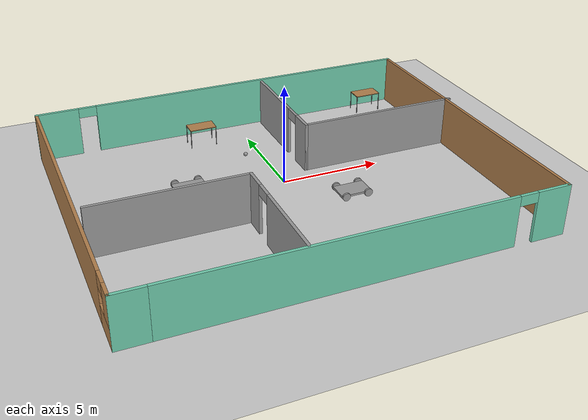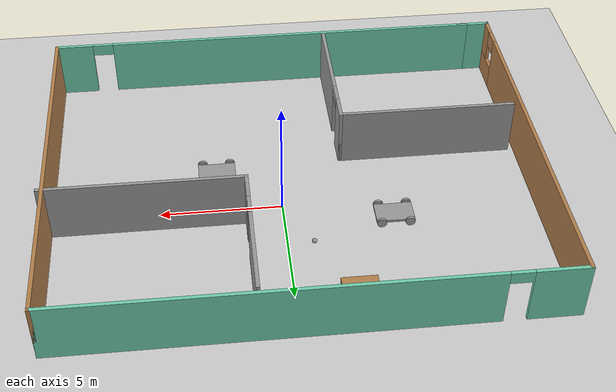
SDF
<sdf version="1.6">
 <world name="default">
  <plugin filename="libcollision_map_creator.so" name="collision_map_creator"/>
  <plugin name="hello" filename="libhello.so"/>
  <light name="sun" type="directional">
   <pose>0 0 10 0 -0 0</pose>
   <diffuse>0.8 0.8 0.8 1</diffuse>
   <specular>0.1 0.1 0.1 1</specular>
   <attenuation>
    <range>1000</range>
    <constant>0.9</constant>
    <linear>0.01</linear>
    <quadratic>0.001</quadratic>
   </attenuation>
   <direction>-0.5 0.5 -1</direction>
  </light>
  <model name="ground_plane">
   <static>1</static>
   <link name="link">
    <collision name="collision">
     <geometry><plane><normal>0 0 1</normal><size>100 100</size></plane></geometry>
     <surface><friction><ode><mu>100</mu><mu2>50</mu2></ode></friction></surface>
    </collision>
    <visual name="visual">
     <cast_shadows>0</cast_shadows>
     <geometry><plane><normal>0 0 1</normal><size>100 100</size></plane></geometry>
     <material>
      <script><uri>file://media/materials/scripts/gazebo.material</uri><name>Gazebo/Grey</name></script>
     </material>
    </visual>
   </link>
  </model>
  <gravity>0 0 -9.8</gravity>
  <magnetic_field>6e-06 2.3e-05 -4.2e-05</magnetic_field>
  <atmosphere type="adiabatic"/>
  <physics name="default_physics" default="0" type="ode">
   <max_step_size>0.001</max_step_size>
   <real_time_factor>1</real_time_factor>
   <real_time_update_rate>1000</real_time_update_rate>
  </physics>
  <scene><ambient>0.4 0.4 0.4 1</ambient><background>0.7 0.7 0.7 1</background><shadows>1</shadows></scene>
  <spherical_coordinates>
   <surface_model>EARTH_WGS84</surface_model>
   <latitude_deg>0</latitude_deg>
   <longitude_deg>0</longitude_deg>
   <elevation>0</elevation>
   <heading_deg>0</heading_deg>
  </spherical_coordinates>
  <model name="udacity">
   <pose>-0.447101 -1.01478 0 0 -0 0</pose>
   <link name="Wall_12">
    <pose>-0.093204 7.925 0 0 -0 0</pose>
    <visual name="Wall_12_Visual_0">
     <pose>-8.92618 0 1.25 0 -0 0</pose>
     <geometry><box><size>2.14764 0.15 2.5</size></box></geometry>
     <material>
      <script><uri>file://media/materials/scripts/gazebo.material</uri><name>Gazebo/Grey</name></script>
      <ambient>0.435294 0.796078 0.67451 1</ambient>
     </material>
    </visual>
    <collision name="Wall_12_Collision_0">
     <geometry><box><size>2.14764 0.15 2.5</size></box></geometry>
     <pose>-8.92618 0 1.25 0 -0 0</pose>
    </collision>
    <visual name="Wall_12_Visual_1">
     <pose>1.52382 0 1.25 0 -0 0</pose>
     <geometry><box><size>16.9524 0.15 2.5</size></box></geometry>
     <material>
      <script><uri>file://media/materials/scripts/gazebo.material</uri><name>Gazebo/Grey</name></script>
      <ambient>0.435294 0.796078 0.67451 1</ambient>
     </material>
    </visual>
    <collision name="Wall_12_Collision_1">
     <geometry><box><size>16.9524 0.15 2.5</size></box></geometry>
     <pose>1.52382 0 1.25 0 -0 0</pose>
    </collision>
    <visual name="Wall_12_Visual_2">
     <pose>-7.40236 0 2.25 0 -0 0</pose>
     <geometry><box><size>0.9 0.15 0.5</size></box></geometry>
     <material>
      <script><uri>file://media/materials/scripts/gazebo.material</uri><name>Gazebo/Grey</name></script>
      <ambient>0.435294 0.796078 0.67451 1</ambient>
     </material>
    </visual>
    <collision name="Wall_12_Collision_2">
     <geometry><box><size>0.9 0.15 0.5</size></box></geometry>
     <pose>-7.40236 0 2.25 0 -0 0</pose>
    </collision>
   </link>
   <link name="Wall_13">
    <collision name="Wall_13_Collision">
     <geometry><box><size>16 0.15 2.5</size></box></geometry>
     <pose>0 0 1.25 0 -0 0</pose>
    </collision>
    <visual name="Wall_13_Visual">
     <pose>0 0 1.25 0 -0 0</pose>
     <geometry><box><size>16 0.15 2.5</size></box></geometry>
     <material>
      <script><uri>file://media/materials/scripts/gazebo.material</uri><name>Gazebo/Wood</name></script>
      <ambient>0.435294 0.796078 0.67451 1</ambient>
     </material>
    </visual>
    <pose>9.8318 0 0 0 0 -1.5708</pose>
   </link>
   <link name="Wall_14">
    <pose>0.406796 -7.925 0 0 -0 3.14159</pose>
    <visual name="Wall_14_Visual_0">
     <pose>-8.65904 0 1.25 0 -0 0</pose>
     <geometry><box><size>1.68192 0.15 2.5</size></box></geometry>
     <material>
      <script><uri>file://media/materials/scripts/gazebo.material</uri><name>Gazebo/Grey</name></script>
      <ambient>0.435294 0.796078 0.67451 1</ambient>
     </material>
    </visual>
    <collision name="Wall_14_Collision_0">
     <geometry><box><size>1.68192 0.15 2.5</size></box></geometry>
     <pose>-8.65904 0 1.25 0 -0 0</pose>
    </collision>
    <visual name="Wall_14_Visual_1">
     <pose>1.29096 0 1.25 0 -0 0</pose>
     <geometry><box><size>16.4181 0.15 2.5</size></box></geometry>
     <material>
      <script><uri>file://media/materials/scripts/gazebo.material</uri><name>Gazebo/Grey</name></script>
      <ambient>0.435294 0.796078 0.67451 1</ambient>
     </material>
    </visual>
    <collision name="Wall_14_Collision_1">
     <geometry><box><size>16.4181 0.15 2.5</size></box></geometry>
     <pose>1.29096 0 1.25 0 -0 0</pose>
    </collision>
    <visual name="Wall_14_Visual_2">
     <pose>-7.36808 0 2.25 0 -0 0</pose>
     <geometry><box><size>0.9 0.15 0.5</size></box></geometry>
     <material>
      <script><uri>file://media/materials/scripts/gazebo.material</uri><name>Gazebo/Grey</name></script>
      <ambient>0.435294 0.796078 0.67451 1</ambient>
     </material>
    </visual>
    <collision name="Wall_14_Collision_2">
     <geometry><box><size>0.9 0.15 0.5</size></box></geometry>
     <pose>-7.36808 0 2.25 0 -0 0</pose>
    </collision>
   </link>
   <link name="Wall_17">
    <pose>-10.0182 0 0 0 0 -1.5708</pose>
    <visual name="Wall_17_Visual_0">
     <pose>-0.825647 0 1.25 0 -0 0</pose>
     <geometry><box><size>14.3487 0.15 2.5</size></box></geometry>
     <material>
      <script><uri>file://media/materials/scripts/gazebo.material</uri><name>Gazebo/Wood</name></script>
      <ambient>0.435294 0.796078 0.67451 1</ambient>
     </material>
    </visual>
    <collision name="Wall_17_Collision_0">
     <geometry><box><size>14.3487 0.15 2.5</size></box></geometry>
     <pose>-0.825647 0 1.25 0 -0 0</pose>
    </collision>
    <visual name="Wall_17_Visual_1">
     <pose>7.17435 0 0.5 0 -0 0</pose>
     <geometry><box><size>1.65129 0.15 1</size></box></geometry>
     <material>
      <script><uri>file://media/materials/scripts/gazebo.material</uri><name>Gazebo/Wood</name></script>
      <ambient>0.435294 0.796078 0.67451 1</ambient>
     </material>
    </visual>
    <collision name="Wall_17_Collision_1">
     <geometry><box><size>1.65129 0.15 1</size></box></geometry>
     <pose>7.17435 0 0.5 0 -0 0</pose>
    </collision>
    <visual name="Wall_17_Visual_2">
     <pose>7.57435 0 1.75 0 -0 0</pose>
     <geometry><box><size>0.851294 0.15 1.5</size></box></geometry>
     <material>
      <script><uri>file://media/materials/scripts/gazebo.material</uri><name>Gazebo/Wood</name></script>
      <ambient>0.435294 0.796078 0.67451 1</ambient>
     </material>
    </visual>
    <collision name="Wall_17_Collision_2">
     <geometry><box><size>0.851294 0.15 1.5</size></box></geometry>
     <pose>7.57435 0 1.75 0 -0 0</pose>
    </collision>
    <visual name="Wall_17_Visual_3">
     <pose>6.74871 0 2.15 0 -0 0</pose>
     <geometry><box><size>0.8 0.15 0.7</size></box></geometry>
     <material>
      <script><uri>file://media/materials/scripts/gazebo.material</uri><name>Gazebo/Wood</name></script>
      <ambient>0.435294 0.796078 0.67451 1</ambient>
     </material>
    </visual>
    <collision name="Wall_17_Collision_3">
     <geometry><box><size>0.8 0.15 0.7</size></box></geometry>
     <pose>6.74871 0 2.15 0 -0 0</pose>
    </collision>
   </link>
   <link name="Wall_18">
    <collision name="Wall_18_Collision">
     <geometry><box><size>1.5 0.15 2.5</size></box></geometry>
     <pose>0 0 1.25 0 -0 0</pose>
    </collision>
    <visual name="Wall_18_Visual">
     <pose>0 0 1.25 0 -0 0</pose>
     <geometry><box><size>1.5 0.15 2.5</size></box></geometry>
     <material>
      <script><uri>file://media/materials/scripts/gazebo.material</uri><name>Gazebo/Grey</name></script>
      <ambient>0.435294 0.796078 0.67451 1</ambient>
     </material>
    </visual>
    <pose>-9.3432 -7.925 0 0 -0 0</pose>
   </link>
   <link name="Wall_20">
    <collision name="Wall_20_Collision">
     <geometry><box><size>7.5 0.15 2.5</size></box></geometry>
     <pose>0 0 1.25 0 -0 0</pose>
    </collision>
    <visual name="Wall_20_Visual">
     <pose>0 0 1.25 0 -0 0</pose>
     <geometry><box><size>7.5 0.15 2.5</size></box></geometry>
     <material>
      <script><uri>file://media/materials/scripts/gazebo.material</uri><name>Gazebo/Grey</name></script>
      <ambient>1 1 1 1</ambient>
     </material>
    </visual>
    <pose>-5.97404 -1.73488 0 0 -0 0</pose>
   </link>
   <link name="Wall_21">
    <pose>-2.29904 -4.78488 0 0 0 -1.5708</pose>
    <visual name="Wall_21_Visual_0">
     <pose>-2.5434 0 1.25 0 -0 0</pose>
     <geometry><box><size>1.1632 0.15 2.5</size></box></geometry>
     <material>
      <script><uri>file://media/materials/scripts/gazebo.material</uri><name>Gazebo/Grey</name></script>
      <ambient>1 1 1 1</ambient>
     </material>
    </visual>
    <collision name="Wall_21_Collision_0">
     <geometry><box><size>1.1632 0.15 2.5</size></box></geometry>
     <pose>-2.5434 0 1.25 0 -0 0</pose>
    </collision>
    <visual name="Wall_21_Visual_1">
     <pose>1.0316 0 1.25 0 -0 0</pose>
     <geometry><box><size>4.1868 0.15 2.5</size></box></geometry>
     <material>
      <script><uri>file://media/materials/scripts/gazebo.material</uri><name>Gazebo/Grey</name></script>
      <ambient>1 1 1 1</ambient>
     </material>
    </visual>
    <collision name="Wall_21_Collision_1">
     <geometry><box><size>4.1868 0.15 2.5</size></box></geometry>
     <pose>1.0316 0 1.25 0 -0 0</pose>
    </collision>
    <visual name="Wall_21_Visual_2">
     <pose>-1.5118 0 2.25 0 -0 0</pose>
     <geometry><box><size>0.9 0.15 0.5</size></box></geometry>
     <material>
      <script><uri>file://media/materials/scripts/gazebo.material</uri><name>Gazebo/Grey</name></script>
      <ambient>1 1 1 1</ambient>
     </material>
    </visual>
    <collision name="Wall_21_Collision_2">
     <geometry><box><size>0.9 0.15 0.5</size></box></geometry>
     <pose>-1.5118 0 2.25 0 -0 0</pose>
    </collision>
   </link>
   <link name="Wall_23">
    <pose>1.9182 4.69236 0 0 0 -1.5708</pose>
    <visual name="Wall_23_Visual_0">
     <pose>-1.06479 0 1.25 0 -0 0</pose>
     <geometry><box><size>3.87042 0.15 2.5</size></box></geometry>
     <material>
      <script><uri>file://media/materials/scripts/gazebo.material</uri><name>Gazebo/Grey</name></script>
      <ambient>1 1 1 1</ambient>
     </material>
    </visual>
    <collision name="Wall_23_Collision_0">
     <geometry><box><size>3.87042 0.15 2.5</size></box></geometry>
     <pose>-1.06479 0 1.25 0 -0 0</pose>
    </collision>
    <visual name="Wall_23_Visual_1">
     <pose>2.38521 0 1.25 0 -0 0</pose>
     <geometry><box><size>1.22958 0.15 2.5</size></box></geometry>
     <material>
      <script><uri>file://media/materials/scripts/gazebo.material</uri><name>Gazebo/Grey</name></script>
      <ambient>1 1 1 1</ambient>
     </material>
    </visual>
    <collision name="Wall_23_Collision_1">
     <geometry><box><size>1.22958 0.15 2.5</size></box></geometry>
     <pose>2.38521 0 1.25 0 -0 0</pose>
    </collision>
    <visual name="Wall_23_Visual_2">
     <pose>1.32042 0 2.25 0 -0 0</pose>
     <geometry><box><size>0.9 0.15 0.5</size></box></geometry>
     <material>
      <script><uri>file://media/materials/scripts/gazebo.material</uri><name>Gazebo/Grey</name></script>
      <ambient>1 1 1 1</ambient>
     </material>
    </visual>
    <collision name="Wall_23_Collision_2">
     <geometry><box><size>0.9 0.15 0.5</size></box></geometry>
     <pose>1.32042 0 2.25 0 -0 0</pose>
    </collision>
   </link>
   <link name="Wall_24">
    <collision name="Wall_24_Collision">
     <geometry><box><size>8.25 0.15 2.5</size></box></geometry>
     <pose>0 0 1.25 0 -0 0</pose>
    </collision>
    <visual name="Wall_24_Visual">
     <pose>0 0 1.25 0 -0 0</pose>
     <geometry><box><size>8.25 0.15 2.5</size></box></geometry>
     <material>
      <script><uri>file://media/materials/scripts/gazebo.material</uri><name>Gazebo/Grey</name></script>
      <ambient>1 1 1 1</ambient>
     </material>
    </visual>
    <pose>5.9682 1.76736 0 0 -0 0</pose>
   </link>
   <static>1</static>
  </model>
  <model name="ForWheelRobot">
   <link name="link_3">
    <pose>0 -0.000792 0 0 -0 0</pose>
    <inertial>
     <mass>2.22867</mass>
     <inertia><ixx>0.371446</ixx><ixy>0</ixy><ixz>0</ixz><iyy>1.10821</iyy><iyz>0</iyz><izz>1.10821</izz></inertia>
    </inertial>
    <visual name="visual">
     <geometry><box><size>1.56008 1 0.1</size></box></geometry>
     <material>
      <lighting>1</lighting>
      <script><uri>file://media/materials/scripts/gazebo.material</uri><name>Gazebo/Grey</name></script>
      <ambient>0.3 0.3 0.3 1</ambient>
      <diffuse>0.7 0.7 0.7 1</diffuse>
      <specular>0.01 0.01 0.01 1</specular>
      <emissive>0 0 0 1</emissive>
      <shader type="vertex"><normal_map>__default__</normal_map></shader>
     </material>
    </visual>
    <collision name="collision">
     <geometry><box><size>1.56008 1 0.1</size></box></geometry>
     <surface>
      <friction>
       <ode><mu>1</mu><mu2>1</mu2><fdir1>0 0 0</fdir1><slip1>0</slip1><slip2>0</slip2></ode>
       <torsional>
        <coefficient>1</coefficient>
        <patch_radius>0</patch_radius>
        <surface_radius>0</surface_radius>
        <use_patch_radius>1</use_patch_radius>
        <ode><slip>0</slip></ode>
       </torsional>
      </friction>
      <bounce><restitution_coefficient>0</restitution_coefficient><threshold>1e+06</threshold></bounce>
      <contact>
       <collide_without_contact>0</collide_without_contact>
       <collide_without_contact_bitmask>1</collide_without_contact_bitmask>
       <collide_bitmask>1</collide_bitmask>
       <ode>
        <soft_cfm>0</soft_cfm>
        <soft_erp>0.2</soft_erp>
        <kp>1e+13</kp>
        <kd>1</kd>
        <max_vel>0.01</max_vel>
        <min_depth>0</min_depth>
       </ode>
       <bullet>
        <split_impulse>1</split_impulse>
        <split_impulse_penetration_threshold>-0.01</split_impulse_penetration_threshold>
        <soft_cfm>0</soft_cfm>
        <soft_erp>0.2</soft_erp>
        <kp>1e+13</kp>
        <kd>1</kd>
       </bullet>
      </contact>
     </surface>
    </collision>
   </link>
   <link name="link_4">
    <pose>0.58004 0.549227 0 1.5707 -0 0</pose>
    <inertial>
     <mass>1</mass>
     <inertia><ixx>0.145833</ixx><ixy>0</ixy><ixz>0</ixz><iyy>0.145833</iyy><iyz>0</iyz><izz>0.125</izz></inertia>
    </inertial>
    <visual name="visual">
     <geometry><cylinder><radius>0.2</radius><length>0.1</length></cylinder></geometry>
     <material>
      <lighting>1</lighting>
      <script><uri>file://media/materials/scripts/gazebo.material</uri><name>Gazebo/Grey</name></script>
      <ambient>0.3 0.3 0.3 1</ambient>
      <diffuse>0.7 0.7 0.7 1</diffuse>
      <specular>0.01 0.01 0.01 1</specular>
      <emissive>0 0 0 1</emissive>
      <shader type="vertex"><normal_map>__default__</normal_map></shader>
     </material>
    </visual>
    <collision name="collision">
     <geometry><cylinder><radius>0.2</radius><length>0.1</length></cylinder></geometry>
     <surface>
      <friction>
       <ode><mu>1</mu><mu2>1</mu2><fdir1>0 0 0</fdir1><slip1>0</slip1><slip2>0</slip2></ode>
       <torsional>
        <coefficient>1</coefficient>
        <patch_radius>0</patch_radius>
        <surface_radius>0</surface_radius>
        <use_patch_radius>1</use_patch_radius>
        <ode><slip>0</slip></ode>
       </torsional>
      </friction>
      <bounce><restitution_coefficient>0</restitution_coefficient><threshold>1e+06</threshold></bounce>
      <contact>
       <collide_without_contact>0</collide_without_contact>
       <collide_without_contact_bitmask>1</collide_without_contact_bitmask>
       <collide_bitmask>1</collide_bitmask>
       <ode>
        <soft_cfm>0</soft_cfm>
        <soft_erp>0.2</soft_erp>
        <kp>1e+13</kp>
        <kd>1</kd>
        <max_vel>0.01</max_vel>
        <min_depth>0</min_depth>
       </ode>
       <bullet>
        <split_impulse>1</split_impulse>
        <split_impulse_penetration_threshold>-0.01</split_impulse_penetration_threshold>
        <soft_cfm>0</soft_cfm>
        <soft_erp>0.2</soft_erp>
        <kp>1e+13</kp>
        <kd>1</kd>
       </bullet>
      </contact>
     </surface>
    </collision>
   </link>
   <link name="link_4_clone">
    <pose>-0.580039 0.553193 0 1.5707 -0 0</pose>
    <inertial>
     <mass>1</mass>
     <inertia><ixx>0.145833</ixx><ixy>0</ixy><ixz>0</ixz><iyy>0.145833</iyy><iyz>0</iyz><izz>0.125</izz></inertia>
    </inertial>
    <visual name="visual">
     <geometry><cylinder><radius>0.2</radius><length>0.1</length></cylinder></geometry>
     <material>
      <lighting>1</lighting>
      <script><uri>file://media/materials/scripts/gazebo.material</uri><name>Gazebo/Grey</name></script>
      <ambient>0.3 0.3 0.3 1</ambient>
      <diffuse>0.7 0.7 0.7 1</diffuse>
      <specular>0.01 0.01 0.01 1</specular>
      <emissive>0 0 0 1</emissive>
      <shader type="vertex"><normal_map>__default__</normal_map></shader>
     </material>
    </visual>
    <collision name="collision">
     <geometry><cylinder><radius>0.2</radius><length>0.1</length></cylinder></geometry>
     <surface>
      <friction>
       <ode><mu>1</mu><mu2>1</mu2><fdir1>0 0 0</fdir1><slip1>0</slip1><slip2>0</slip2></ode>
       <torsional>
        <coefficient>1</coefficient>
        <patch_radius>0</patch_radius>
        <surface_radius>0</surface_radius>
        <use_patch_radius>1</use_patch_radius>
        <ode><slip>0</slip></ode>
       </torsional>
      </friction>
      <bounce><restitution_coefficient>0</restitution_coefficient><threshold>1e+06</threshold></bounce>
      <contact>
       <collide_without_contact>0</collide_without_contact>
       <collide_without_contact_bitmask>1</collide_without_contact_bitmask>
       <collide_bitmask>1</collide_bitmask>
       <ode>
        <soft_cfm>0</soft_cfm>
        <soft_erp>0.2</soft_erp>
        <kp>1e+13</kp>
        <kd>1</kd>
        <max_vel>0.01</max_vel>
        <min_depth>0</min_depth>
       </ode>
       <bullet>
        <split_impulse>1</split_impulse>
        <split_impulse_penetration_threshold>-0.01</split_impulse_penetration_threshold>
        <soft_cfm>0</soft_cfm>
        <soft_erp>0.2</soft_erp>
        <kp>1e+13</kp>
        <kd>1</kd>
       </bullet>
      </contact>
     </surface>
    </collision>
   </link>
   <link name="link_4_clone_0">
    <pose>-0.580039 -0.550812 0 1.5707 -0 0</pose>
    <inertial>
     <mass>1</mass>
     <inertia><ixx>0.145833</ixx><ixy>0</ixy><ixz>0</ixz><iyy>0.145833</iyy><iyz>0</iyz><izz>0.125</izz></inertia>
    </inertial>
    <visual name="visual">
     <geometry><cylinder><radius>0.2</radius><length>0.1</length></cylinder></geometry>
     <material>
      <lighting>1</lighting>
      <script><uri>file://media/materials/scripts/gazebo.material</uri><name>Gazebo/Grey</name></script>
      <ambient>0.3 0.3 0.3 1</ambient>
      <diffuse>0.7 0.7 0.7 1</diffuse>
      <specular>0.01 0.01 0.01 1</specular>
      <emissive>0 0 0 1</emissive>
      <shader type="vertex"><normal_map>__default__</normal_map></shader>
     </material>
    </visual>
    <collision name="collision">
     <geometry><cylinder><radius>0.2</radius><length>0.1</length></cylinder></geometry>
     <surface>
      <friction>
       <ode><mu>1</mu><mu2>1</mu2><fdir1>0 0 0</fdir1><slip1>0</slip1><slip2>0</slip2></ode>
       <torsional>
        <coefficient>1</coefficient>
        <patch_radius>0</patch_radius>
        <surface_radius>0</surface_radius>
        <use_patch_radius>1</use_patch_radius>
        <ode><slip>0</slip></ode>
       </torsional>
      </friction>
      <bounce><restitution_coefficient>0</restitution_coefficient><threshold>1e+06</threshold></bounce>
      <contact>
       <collide_without_contact>0</collide_without_contact>
       <collide_without_contact_bitmask>1</collide_without_contact_bitmask>
       <collide_bitmask>1</collide_bitmask>
       <ode>
        <soft_cfm>0</soft_cfm>
        <soft_erp>0.2</soft_erp>
        <kp>1e+13</kp>
        <kd>1</kd>
        <max_vel>0.01</max_vel>
        <min_depth>0</min_depth>
       </ode>
       <bullet>
        <split_impulse>1</split_impulse>
        <split_impulse_penetration_threshold>-0.01</split_impulse_penetration_threshold>
        <soft_cfm>0</soft_cfm>
        <soft_erp>0.2</soft_erp>
        <kp>1e+13</kp>
        <kd>1</kd>
       </bullet>
      </contact>
     </surface>
    </collision>
   </link>
   <link name="link_4_clone_1">
    <pose>0.58004 -0.550812 0 1.5707 -0 0</pose>
    <inertial>
     <mass>1</mass>
     <inertia><ixx>0.145833</ixx><ixy>0</ixy><ixz>0</ixz><iyy>0.145833</iyy><iyz>0</iyz><izz>0.125</izz></inertia>
    </inertial>
    <visual name="visual">
     <geometry><cylinder><radius>0.2</radius><length>0.1</length></cylinder></geometry>
     <material>
      <lighting>1</lighting>
      <script><uri>file://media/materials/scripts/gazebo.material</uri><name>Gazebo/Grey</name></script>
      <ambient>0.3 0.3 0.3 1</ambient>
      <diffuse>0.7 0.7 0.7 1</diffuse>
      <specular>0.01 0.01 0.01 1</specular>
      <emissive>0 0 0 1</emissive>
      <shader type="vertex"><normal_map>__default__</normal_map></shader>
     </material>
    </visual>
    <collision name="collision">
     <geometry><cylinder><radius>0.2</radius><length>0.1</length></cylinder></geometry>
     <surface>
      <friction>
       <ode><mu>1</mu><mu2>1</mu2><fdir1>0 0 0</fdir1><slip1>0</slip1><slip2>0</slip2></ode>
       <torsional>
        <coefficient>1</coefficient>
        <patch_radius>0</patch_radius>
        <surface_radius>0</surface_radius>
        <use_patch_radius>1</use_patch_radius>
        <ode><slip>0</slip></ode>
       </torsional>
      </friction>
      <bounce><restitution_coefficient>0</restitution_coefficient><threshold>1e+06</threshold></bounce>
      <contact>
       <collide_without_contact>0</collide_without_contact>
       <collide_without_contact_bitmask>1</collide_without_contact_bitmask>
       <collide_bitmask>1</collide_bitmask>
       <ode>
        <soft_cfm>0</soft_cfm>
        <soft_erp>0.2</soft_erp>
        <kp>1e+13</kp>
        <kd>1</kd>
        <max_vel>0.01</max_vel>
        <min_depth>0</min_depth>
       </ode>
       <bullet>
        <split_impulse>1</split_impulse>
        <split_impulse_penetration_threshold>-0.01</split_impulse_penetration_threshold>
        <soft_cfm>0</soft_cfm>
        <soft_erp>0.2</soft_erp>
        <kp>1e+13</kp>
        <kd>1</kd>
       </bullet>
      </contact>
     </surface>
    </collision>
   </link>
   <joint name="link_3_JOINT_1" type="revolute">
    <parent>link_3</parent>
    <child>link_4_clone</child>
    <axis>
     <xyz>0 0 1</xyz>
     <use_parent_model_frame>0</use_parent_model_frame>
     <limit>
      <lower>-1.79769e+308</lower>
      <upper>1.79769e+308</upper>
      <effort>-1</effort>
      <velocity>-1</velocity>
     </limit>
     <dynamics>
      <spring_reference>0</spring_reference>
      <spring_stiffness>0</spring_stiffness>
      <damping>0</damping>
     </dynamics>
    </axis>
    <physics>
     <ode><limit><cfm>0</cfm><erp>0.2</erp></limit><suspension><cfm>0</cfm><erp>0.2</erp></suspension></ode>
    </physics>
   </joint>
   <joint name="link_3_JOINT_2" type="revolute">
    <parent>link_3</parent>
    <child>link_4_clone_0</child>
    <axis>
     <xyz>0 0 1</xyz>
     <use_parent_model_frame>0</use_parent_model_frame>
     <limit>
      <lower>-1.79769e+308</lower>
      <upper>1.79769e+308</upper>
      <effort>-1</effort>
      <velocity>-1</velocity>
     </limit>
     <dynamics>
      <spring_reference>0</spring_reference>
      <spring_stiffness>0</spring_stiffness>
      <damping>0</damping>
     </dynamics>
    </axis>
    <physics>
     <ode><limit><cfm>0</cfm><erp>0.2</erp></limit><suspension><cfm>0</cfm><erp>0.2</erp></suspension></ode>
    </physics>
   </joint>
   <joint name="link_3_JOINT_3" type="revolute">
    <parent>link_3</parent>
    <child>link_4</child>
    <axis>
     <xyz>0 0 1</xyz>
     <use_parent_model_frame>0</use_parent_model_frame>
     <limit>
      <lower>-1.79769e+308</lower>
      <upper>1.79769e+308</upper>
      <effort>-1</effort>
      <velocity>-1</velocity>
     </limit>
     <dynamics>
      <spring_reference>0</spring_reference>
      <spring_stiffness>0</spring_stiffness>
      <damping>0</damping>
     </dynamics>
    </axis>
    <physics>
     <ode><limit><cfm>0</cfm><erp>0.2</erp></limit><suspension><cfm>0</cfm><erp>0.2</erp></suspension></ode>
    </physics>
   </joint>
   <joint name="link_3_JOINT_4" type="revolute">
    <parent>link_3</parent>
    <child>link_4_clone_1</child>
    <axis>
     <xyz>0 0 1</xyz>
     <use_parent_model_frame>0</use_parent_model_frame>
     <limit>
      <lower>-1.79769e+308</lower>
      <upper>1.79769e+308</upper>
      <effort>-1</effort>
      <velocity>-1</velocity>
     </limit>
     <dynamics>
      <spring_reference>0</spring_reference>
      <spring_stiffness>0</spring_stiffness>
      <damping>0</damping>
     </dynamics>
    </axis>
    <physics>
     <ode><limit><cfm>0</cfm><erp>0.2</erp></limit><suspension><cfm>0</cfm><erp>0.2</erp></suspension></ode>
    </physics>
   </joint>
   <static>0</static>
   <pose>-4.48 1.00082 0.200005 0 -0 6e-06</pose>
  </model>
  <model name="ForWheelRobot_clone">
   <link name="link_3">
    <pose>0 -0.000792 0 0 -0 0</pose>
    <inertial>
     <mass>2.22867</mass>
     <inertia><ixx>0.371446</ixx><ixy>0</ixy><ixz>0</ixz><iyy>1.10821</iyy><iyz>0</iyz><izz>1.10821</izz></inertia>
    </inertial>
    <visual name="visual">
     <geometry><box><size>1.56008 1 0.1</size></box></geometry>
     <material>
      <lighting>1</lighting>
      <script><uri>file://media/materials/scripts/gazebo.material</uri><name>Gazebo/Grey</name></script>
      <ambient>0.3 0.3 0.3 1</ambient>
      <diffuse>0.7 0.7 0.7 1</diffuse>
      <specular>0.01 0.01 0.01 1</specular>
      <emissive>0 0 0 1</emissive>
      <shader type="vertex"><normal_map>__default__</normal_map></shader>
     </material>
    </visual>
    <collision name="collision">
     <geometry><box><size>1.56008 1 0.1</size></box></geometry>
     <surface>
      <friction>
       <ode><mu>1</mu><mu2>1</mu2><fdir1>0 0 0</fdir1><slip1>0</slip1><slip2>0</slip2></ode>
       <torsional>
        <coefficient>1</coefficient>
        <patch_radius>0</patch_radius>
        <surface_radius>0</surface_radius>
        <use_patch_radius>1</use_patch_radius>
        <ode><slip>0</slip></ode>
       </torsional>
      </friction>
      <bounce><restitution_coefficient>0</restitution_coefficient><threshold>1e+06</threshold></bounce>
      <contact>
       <collide_without_contact>0</collide_without_contact>
       <collide_without_contact_bitmask>1</collide_without_contact_bitmask>
       <collide_bitmask>1</collide_bitmask>
       <ode>
        <soft_cfm>0</soft_cfm>
        <soft_erp>0.2</soft_erp>
        <kp>1e+13</kp>
        <kd>1</kd>
        <max_vel>0.01</max_vel>
        <min_depth>0</min_depth>
       </ode>
       <bullet>
        <split_impulse>1</split_impulse>
        <split_impulse_penetration_threshold>-0.01</split_impulse_penetration_threshold>
        <soft_cfm>0</soft_cfm>
        <soft_erp>0.2</soft_erp>
        <kp>1e+13</kp>
        <kd>1</kd>
       </bullet>
      </contact>
     </surface>
    </collision>
   </link>
   <link name="link_4">
    <pose>0.58004 0.549227 0 1.5707 -0 0</pose>
    <inertial>
     <mass>1</mass>
     <inertia><ixx>0.145833</ixx><ixy>0</ixy><ixz>0</ixz><iyy>0.145833</iyy><iyz>0</iyz><izz>0.125</izz></inertia>
    </inertial>
    <visual name="visual">
     <geometry><cylinder><radius>0.2</radius><length>0.1</length></cylinder></geometry>
     <material>
      <lighting>1</lighting>
      <script><uri>file://media/materials/scripts/gazebo.material</uri><name>Gazebo/Grey</name></script>
      <ambient>0.3 0.3 0.3 1</ambient>
      <diffuse>0.7 0.7 0.7 1</diffuse>
      <specular>0.01 0.01 0.01 1</specular>
      <emissive>0 0 0 1</emissive>
      <shader type="vertex"><normal_map>__default__</normal_map></shader>
     </material>
    </visual>
    <collision name="collision">
     <geometry><cylinder><radius>0.2</radius><length>0.1</length></cylinder></geometry>
     <surface>
      <friction>
       <ode><mu>1</mu><mu2>1</mu2><fdir1>0 0 0</fdir1><slip1>0</slip1><slip2>0</slip2></ode>
       <torsional>
        <coefficient>1</coefficient>
        <patch_radius>0</patch_radius>
        <surface_radius>0</surface_radius>
        <use_patch_radius>1</use_patch_radius>
        <ode><slip>0</slip></ode>
       </torsional>
      </friction>
      <bounce><restitution_coefficient>0</restitution_coefficient><threshold>1e+06</threshold></bounce>
      <contact>
       <collide_without_contact>0</collide_without_contact>
       <collide_without_contact_bitmask>1</collide_without_contact_bitmask>
       <collide_bitmask>1</collide_bitmask>
       <ode>
        <soft_cfm>0</soft_cfm>
        <soft_erp>0.2</soft_erp>
        <kp>1e+13</kp>
        <kd>1</kd>
        <max_vel>0.01</max_vel>
        <min_depth>0</min_depth>
       </ode>
       <bullet>
        <split_impulse>1</split_impulse>
        <split_impulse_penetration_threshold>-0.01</split_impulse_penetration_threshold>
        <soft_cfm>0</soft_cfm>
        <soft_erp>0.2</soft_erp>
        <kp>1e+13</kp>
        <kd>1</kd>
       </bullet>
      </contact>
     </surface>
    </collision>
   </link>
   <link name="link_4_clone">
    <pose>-0.580039 0.553193 0 1.5707 -0 0</pose>
    <inertial>
     <mass>1</mass>
     <inertia><ixx>0.145833</ixx><ixy>0</ixy><ixz>0</ixz><iyy>0.145833</iyy><iyz>0</iyz><izz>0.125</izz></inertia>
    </inertial>
    <visual name="visual">
     <geometry><cylinder><radius>0.2</radius><length>0.1</length></cylinder></geometry>
     <material>
      <lighting>1</lighting>
      <script><uri>file://media/materials/scripts/gazebo.material</uri><name>Gazebo/Grey</name></script>
      <ambient>0.3 0.3 0.3 1</ambient>
      <diffuse>0.7 0.7 0.7 1</diffuse>
      <specular>0.01 0.01 0.01 1</specular>
      <emissive>0 0 0 1</emissive>
      <shader type="vertex"><normal_map>__default__</normal_map></shader>
     </material>
    </visual>
    <collision name="collision">
     <geometry><cylinder><radius>0.2</radius><length>0.1</length></cylinder></geometry>
     <surface>
      <friction>
       <ode><mu>1</mu><mu2>1</mu2><fdir1>0 0 0</fdir1><slip1>0</slip1><slip2>0</slip2></ode>
       <torsional>
        <coefficient>1</coefficient>
        <patch_radius>0</patch_radius>
        <surface_radius>0</surface_radius>
        <use_patch_radius>1</use_patch_radius>
        <ode><slip>0</slip></ode>
       </torsional>
      </friction>
      <bounce><restitution_coefficient>0</restitution_coefficient><threshold>1e+06</threshold></bounce>
      <contact>
       <collide_without_contact>0</collide_without_contact>
       <collide_without_contact_bitmask>1</collide_without_contact_bitmask>
       <collide_bitmask>1</collide_bitmask>
       <ode>
        <soft_cfm>0</soft_cfm>
        <soft_erp>0.2</soft_erp>
        <kp>1e+13</kp>
        <kd>1</kd>
        <max_vel>0.01</max_vel>
        <min_depth>0</min_depth>
       </ode>
       <bullet>
        <split_impulse>1</split_impulse>
        <split_impulse_penetration_threshold>-0.01</split_impulse_penetration_threshold>
        <soft_cfm>0</soft_cfm>
        <soft_erp>0.2</soft_erp>
        <kp>1e+13</kp>
        <kd>1</kd>
       </bullet>
      </contact>
     </surface>
    </collision>
   </link>
   <link name="link_4_clone_0">
    <pose>-0.580039 -0.550812 0 1.5707 -0 0</pose>
    <inertial>
     <mass>1</mass>
     <inertia><ixx>0.145833</ixx><ixy>0</ixy><ixz>0</ixz><iyy>0.145833</iyy><iyz>0</iyz><izz>0.125</izz></inertia>
    </inertial>
    <visual name="visual">
     <geometry><cylinder><radius>0.2</radius><length>0.1</length></cylinder></geometry>
     <material>
      <lighting>1</lighting>
      <script><uri>file://media/materials/scripts/gazebo.material</uri><name>Gazebo/Grey</name></script>
      <ambient>0.3 0.3 0.3 1</ambient>
      <diffuse>0.7 0.7 0.7 1</diffuse>
      <specular>0.01 0.01 0.01 1</specular>
      <emissive>0 0 0 1</emissive>
      <shader type="vertex"><normal_map>__default__</normal_map></shader>
     </material>
    </visual>
    <collision name="collision">
     <geometry><cylinder><radius>0.2</radius><length>0.1</length></cylinder></geometry>
     <surface>
      <friction>
       <ode><mu>1</mu><mu2>1</mu2><fdir1>0 0 0</fdir1><slip1>0</slip1><slip2>0</slip2></ode>
       <torsional>
        <coefficient>1</coefficient>
        <patch_radius>0</patch_radius>
        <surface_radius>0</surface_radius>
        <use_patch_radius>1</use_patch_radius>
        <ode><slip>0</slip></ode>
       </torsional>
      </friction>
      <bounce><restitution_coefficient>0</restitution_coefficient><threshold>1e+06</threshold></bounce>
      <contact>
       <collide_without_contact>0</collide_without_contact>
       <collide_without_contact_bitmask>1</collide_without_contact_bitmask>
       <collide_bitmask>1</collide_bitmask>
       <ode>
        <soft_cfm>0</soft_cfm>
        <soft_erp>0.2</soft_erp>
        <kp>1e+13</kp>
        <kd>1</kd>
        <max_vel>0.01</max_vel>
        <min_depth>0</min_depth>
       </ode>
       <bullet>
        <split_impulse>1</split_impulse>
        <split_impulse_penetration_threshold>-0.01</split_impulse_penetration_threshold>
        <soft_cfm>0</soft_cfm>
        <soft_erp>0.2</soft_erp>
        <kp>1e+13</kp>
        <kd>1</kd>
       </bullet>
      </contact>
     </surface>
    </collision>
   </link>
   <link name="link_4_clone_1">
    <pose>0.58004 -0.550812 0 1.5707 -0 0</pose>
    <inertial>
     <mass>1</mass>
     <inertia><ixx>0.145833</ixx><ixy>0</ixy><ixz>0</ixz><iyy>0.145833</iyy><iyz>0</iyz><izz>0.125</izz></inertia>
    </inertial>
    <visual name="visual">
     <geometry><cylinder><radius>0.2</radius><length>0.1</length></cylinder></geometry>
     <material>
      <lighting>1</lighting>
      <script><uri>file://media/materials/scripts/gazebo.material</uri><name>Gazebo/Grey</name></script>
      <ambient>0.3 0.3 0.3 1</ambient>
      <diffuse>0.7 0.7 0.7 1</diffuse>
      <specular>0.01 0.01 0.01 1</specular>
      <emissive>0 0 0 1</emissive>
      <shader type="vertex"><normal_map>__default__</normal_map></shader>
     </material>
    </visual>
    <collision name="collision">
     <geometry><cylinder><radius>0.2</radius><length>0.1</length></cylinder></geometry>
     <surface>
      <friction>
       <ode><mu>1</mu><mu2>1</mu2><fdir1>0 0 0</fdir1><slip1>0</slip1><slip2>0</slip2></ode>
       <torsional>
        <coefficient>1</coefficient>
        <patch_radius>0</patch_radius>
        <surface_radius>0</surface_radius>
        <use_patch_radius>1</use_patch_radius>
        <ode><slip>0</slip></ode>
       </torsional>
      </friction>
      <bounce><restitution_coefficient>0</restitution_coefficient><threshold>1e+06</threshold></bounce>
      <contact>
       <collide_without_contact>0</collide_without_contact>
       <collide_without_contact_bitmask>1</collide_without_contact_bitmask>
       <collide_bitmask>1</collide_bitmask>
       <ode>
        <soft_cfm>0</soft_cfm>
        <soft_erp>0.2</soft_erp>
        <kp>1e+13</kp>
        <kd>1</kd>
        <max_vel>0.01</max_vel>
        <min_depth>0</min_depth>
       </ode>
       <bullet>
        <split_impulse>1</split_impulse>
        <split_impulse_penetration_threshold>-0.01</split_impulse_penetration_threshold>
        <soft_cfm>0</soft_cfm>
        <soft_erp>0.2</soft_erp>
        <kp>1e+13</kp>
        <kd>1</kd>
       </bullet>
      </contact>
     </surface>
    </collision>
   </link>
   <joint name="link_3_JOINT_1" type="revolute">
    <parent>link_3</parent>
    <child>link_4_clone</child>
    <axis>
     <xyz>0 0 1</xyz>
     <use_parent_model_frame>0</use_parent_model_frame>
     <limit>
      <lower>-1.79769e+308</lower>
      <upper>1.79769e+308</upper>
      <effort>-1</effort>
      <velocity>-1</velocity>
     </limit>
     <dynamics>
      <spring_reference>0</spring_reference>
      <spring_stiffness>0</spring_stiffness>
      <damping>0</damping>
     </dynamics>
    </axis>
    <physics>
     <ode><limit><cfm>0</cfm><erp>0.2</erp></limit><suspension><cfm>0</cfm><erp>0.2</erp></suspension></ode>
    </physics>
   </joint>
   <joint name="link_3_JOINT_2" type="revolute">
    <parent>link_3</parent>
    <child>link_4_clone_0</child>
    <axis>
     <xyz>0 0 1</xyz>
     <use_parent_model_frame>0</use_parent_model_frame>
     <limit>
      <lower>-1.79769e+308</lower>
      <upper>1.79769e+308</upper>
      <effort>-1</effort>
      <velocity>-1</velocity>
     </limit>
     <dynamics>
      <spring_reference>0</spring_reference>
      <spring_stiffness>0</spring_stiffness>
      <damping>0</damping>
     </dynamics>
    </axis>
    <physics>
     <ode><limit><cfm>0</cfm><erp>0.2</erp></limit><suspension><cfm>0</cfm><erp>0.2</erp></suspension></ode>
    </physics>
   </joint>
   <joint name="link_3_JOINT_3" type="revolute">
    <parent>link_3</parent>
    <child>link_4</child>
    <axis>
     <xyz>0 0 1</xyz>
     <use_parent_model_frame>0</use_parent_model_frame>
     <limit>
      <lower>-1.79769e+308</lower>
      <upper>1.79769e+308</upper>
      <effort>-1</effort>
      <velocity>-1</velocity>
     </limit>
     <dynamics>
      <spring_reference>0</spring_reference>
      <spring_stiffness>0</spring_stiffness>
      <damping>0</damping>
     </dynamics>
    </axis>
    <physics>
     <ode><limit><cfm>0</cfm><erp>0.2</erp></limit><suspension><cfm>0</cfm><erp>0.2</erp></suspension></ode>
    </physics>
   </joint>
   <joint name="link_3_JOINT_4" type="revolute">
    <parent>link_3</parent>
    <child>link_4_clone_1</child>
    <axis>
     <xyz>0 0 1</xyz>
     <use_parent_model_frame>0</use_parent_model_frame>
     <limit>
      <lower>-1.79769e+308</lower>
      <upper>1.79769e+308</upper>
      <effort>-1</effort>
      <velocity>-1</velocity>
     </limit>
     <dynamics>
      <spring_reference>0</spring_reference>
      <spring_stiffness>0</spring_stiffness>
      <damping>0</damping>
     </dynamics>
    </axis>
    <physics>
     <ode><limit><cfm>0</cfm><erp>0.2</erp></limit><suspension><cfm>0</cfm><erp>0.2</erp></suspension></ode>
    </physics>
   </joint>
   <static>0</static>
   <pose>2.56563 -2.20741 0.200005 -4e-06 -4e-06 0.006461</pose>
  </model>
  <model name="table">
   <static>0</static>
   <link name="link">
    <collision name="surface">
     <pose>0 0 1 0 -0 0</pose>
     <geometry><box><size>1.5 0.8 0.03</size></box></geometry>
     <surface><friction><ode><mu>0.6</mu><mu2>0.6</mu2></ode></friction></surface>
    </collision>
    <visual name="visual1">
     <pose>0 0 1 0 -0 0</pose>
     <geometry><box><size>1.4 0.8 0.04</size></box></geometry>
     <material>
      <script><uri>file://media/materials/scripts/gazebo.material</uri><name>Gazebo/Wood</name></script>
     </material>
    </visual>
    <collision name="front_left_leg">
     <pose>0.68 0.38 0.5 0 -0 0</pose>
     <geometry><cylinder><radius>0.02</radius><length>1</length></cylinder></geometry>
    </collision>
    <visual name="front_left_leg">
     <pose>0.68 0.38 0.5 0 -0 0</pose>
     <geometry><cylinder><radius>0.02</radius><length>1</length></cylinder></geometry>
     <material>
      <script><uri>file://media/materials/scripts/gazebo.material</uri><name>Gazebo/Grey</name></script>
     </material>
    </visual>
    <collision name="front_right_leg">
     <pose>0.68 -0.38 0.5 0 -0 0</pose>
     <geometry><cylinder><radius>0.02</radius><length>1</length></cylinder></geometry>
    </collision>
    <visual name="front_right_leg">
     <pose>0.68 -0.38 0.5 0 -0 0</pose>
     <geometry><cylinder><radius>0.02</radius><length>1</length></cylinder></geometry>
     <material>
      <script><uri>file://media/materials/scripts/gazebo.material</uri><name>Gazebo/Grey</name></script>
     </material>
    </visual>
    <collision name="back_right_leg">
     <pose>-0.68 -0.38 0.5 0 -0 0</pose>
     <geometry><cylinder><radius>0.02</radius><length>1</length></cylinder></geometry>
    </collision>
    <visual name="back_right_leg">
     <pose>-0.68 -0.38 0.5 0 -0 0</pose>
     <geometry><cylinder><radius>0.02</radius><length>1</length></cylinder></geometry>
     <material>
      <script><uri>file://media/materials/scripts/gazebo.material</uri><name>Gazebo/Grey</name></script>
     </material>
    </visual>
    <collision name="back_left_leg">
     <pose>-0.68 0.38 0.5 0 -0 0</pose>
     <geometry><cylinder><radius>0.02</radius><length>1</length></cylinder></geometry>
    </collision>
    <visual name="back_left_leg">
     <pose>-0.68 0.38 0.5 0 -0 0</pose>
     <geometry><cylinder><radius>0.02</radius><length>1</length></cylinder></geometry>
     <material>
      <script><uri>file://media/materials/scripts/gazebo.material</uri><name>Gazebo/Grey</name></script>
     </material>
    </visual>
    <inertial>
     <inertia><ixx>1</ixx><ixy>0</ixy><ixz>0</ixz><iyy>1</iyy><iyz>0</iyz><izz>1</izz></inertia>
     <mass>1</mass>
    </inertial>
   </link>
   <pose>7.58027 6.10877 -9e-06 0 -1e-06 0</pose>
  </model>
  <model name="table_0">
   <static>0</static>
   <link name="link">
    <collision name="surface">
     <pose>0 0 1 0 -0 0</pose>
     <geometry><box><size>1.5 0.8 0.03</size></box></geometry>
     <surface><friction><ode><mu>0.6</mu><mu2>0.6</mu2></ode></friction></surface>
    </collision>
    <visual name="visual1">
     <pose>0 0 1 0 -0 0</pose>
     <geometry><box><size>1.4 0.8 0.04</size></box></geometry>
     <material>
      <script><uri>file://media/materials/scripts/gazebo.material</uri><name>Gazebo/Wood</name></script>
     </material>
    </visual>
    <collision name="front_left_leg">
     <pose>0.68 0.38 0.5 0 -0 0</pose>
     <geometry><cylinder><radius>0.02</radius><length>1</length></cylinder></geometry>
    </collision>
    <visual name="front_left_leg">
     <pose>0.68 0.38 0.5 0 -0 0</pose>
     <geometry><cylinder><radius>0.02</radius><length>1</length></cylinder></geometry>
     <material>
      <script><uri>file://media/materials/scripts/gazebo.material</uri><name>Gazebo/Grey</name></script>
     </material>
    </visual>
    <collision name="front_right_leg">
     <pose>0.68 -0.38 0.5 0 -0 0</pose>
     <geometry><cylinder><radius>0.02</radius><length>1</length></cylinder></geometry>
    </collision>
    <visual name="front_right_leg">
     <pose>0.68 -0.38 0.5 0 -0 0</pose>
     <geometry><cylinder><radius>0.02</radius><length>1</length></cylinder></geometry>
     <material>
      <script><uri>file://media/materials/scripts/gazebo.material</uri><name>Gazebo/Grey</name></script>
     </material>
    </visual>
    <collision name="back_right_leg">
     <pose>-0.68 -0.38 0.5 0 -0 0</pose>
     <geometry><cylinder><radius>0.02</radius><length>1</length></cylinder></geometry>
    </collision>
    <visual name="back_right_leg">
     <pose>-0.68 -0.38 0.5 0 -0 0</pose>
     <geometry><cylinder><radius>0.02</radius><length>1</length></cylinder></geometry>
     <material>
      <script><uri>file://media/materials/scripts/gazebo.material</uri><name>Gazebo/Grey</name></script>
     </material>
    </visual>
    <collision name="back_left_leg">
     <pose>-0.68 0.38 0.5 0 -0 0</pose>
     <geometry><cylinder><radius>0.02</radius><length>1</length></cylinder></geometry>
    </collision>
    <visual name="back_left_leg">
     <pose>-0.68 0.38 0.5 0 -0 0</pose>
     <geometry><cylinder><radius>0.02</radius><length>1</length></cylinder></geometry>
     <material>
      <script><uri>file://media/materials/scripts/gazebo.material</uri><name>Gazebo/Grey</name></script>
     </material>
    </visual>
    <inertial>
     <inertia><ixx>1</ixx><ixy>0</ixy><ixz>0</ixz><iyy>1</iyy><iyz>0</iyz><izz>1</izz></inertia>
     <mass>1</mass>
    </inertial>
   </link>
   <pose>-2.39103 5.54596 -1e-06 0 1e-06 0</pose>
  </model>
  <model name="myball">
   <link name="link_0">
    <inertial>
     <mass>1</mass>
     <inertia><ixx>0.1</ixx><ixy>0</ixy><ixz>0</ixz><iyy>0.1</iyy><iyz>0</iyz><izz>0.1</izz></inertia>
    </inertial>
    <visual name="visual">
     <geometry><sphere><radius>0.1</radius></sphere></geometry>
     <material>
      <lighting>1</lighting>
      <script><uri>file://media/materials/scripts/gazebo.material</uri><name>Gazebo/Grey</name></script>
      <ambient>1 1 1 1</ambient>
      <diffuse>1 1 1 1</diffuse>
      <specular>1 1 1 1</specular>
      <emissive>1 1 1 1</emissive>
      <shader type="vertex"><normal_map>__default__</normal_map></shader>
     </material>
    </visual>
    <collision name="collision">
     <geometry><sphere><radius>0.5</radius></sphere></geometry>
     <surface>
      <friction>
       <ode><mu>1</mu><mu2>1</mu2><fdir1>0 0 0</fdir1><slip1>0</slip1><slip2>0</slip2></ode>
       <torsional>
        <coefficient>1</coefficient>
        <patch_radius>0</patch_radius>
        <surface_radius>0</surface_radius>
        <use_patch_radius>1</use_patch_radius>
        <ode><slip>0</slip></ode>
       </torsional>
      </friction>
      <bounce><restitution_coefficient>0</restitution_coefficient><threshold>1e+06</threshold></bounce>
      <contact>
       <collide_without_contact>0</collide_without_contact>
       <collide_without_contact_bitmask>1</collide_without_contact_bitmask>
       <collide_bitmask>1</collide_bitmask>
       <ode>
        <soft_cfm>0</soft_cfm>
        <soft_erp>0.2</soft_erp>
        <kp>1e+13</kp>
        <kd>1</kd>
        <max_vel>0.01</max_vel>
        <min_depth>0</min_depth>
       </ode>
       <bullet>
        <split_impulse>1</split_impulse>
        <split_impulse_penetration_threshold>-0.01</split_impulse_penetration_threshold>
        <soft_cfm>0</soft_cfm>
        <soft_erp>0.2</soft_erp>
        <kp>1e+13</kp>
        <kd>1</kd>
       </bullet>
      </contact>
     </surface>
    </collision>
   </link>
   <static>0</static>
   <pose>-1.02918 2.5965 0.5 0 -0 0</pose>
  </model>
 </world>
</sdf>
